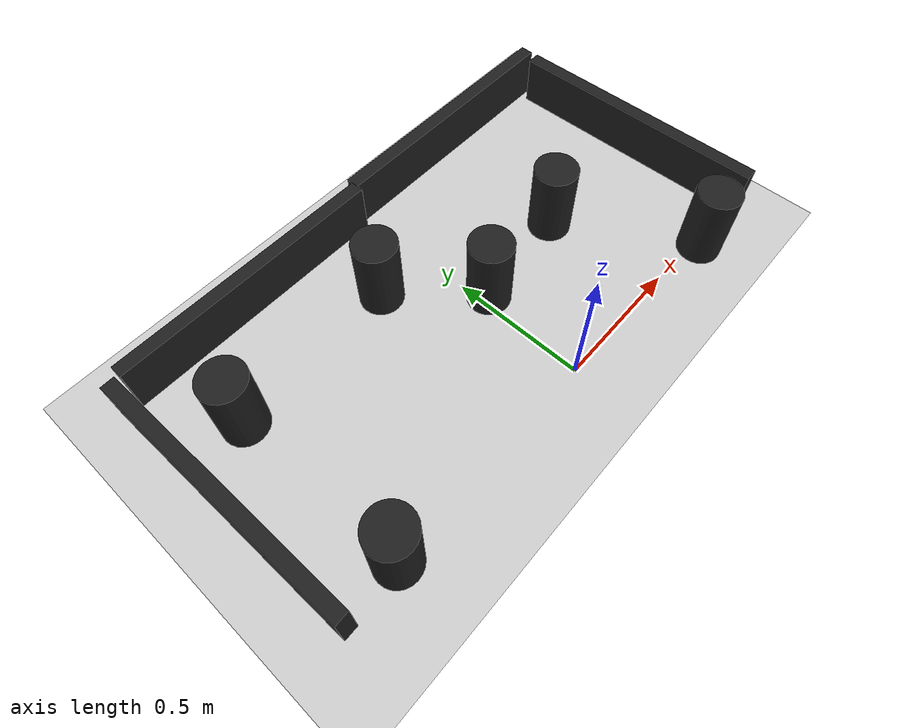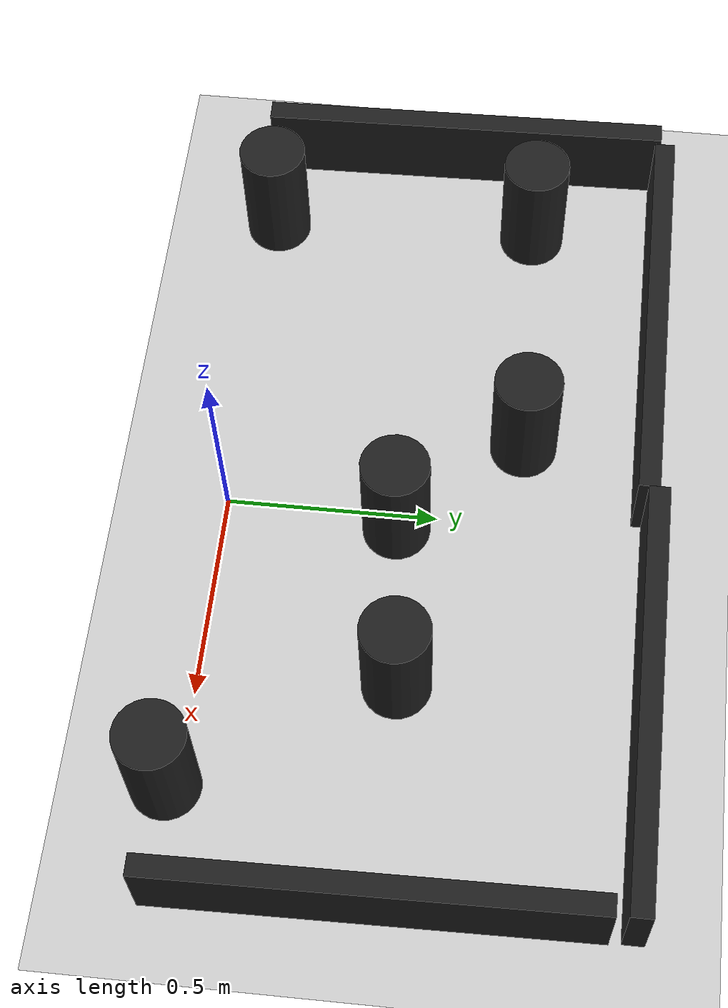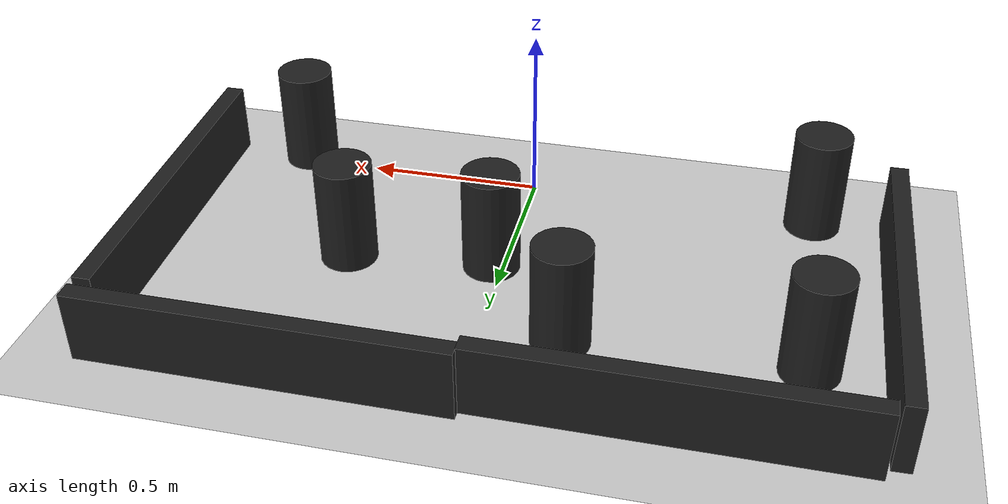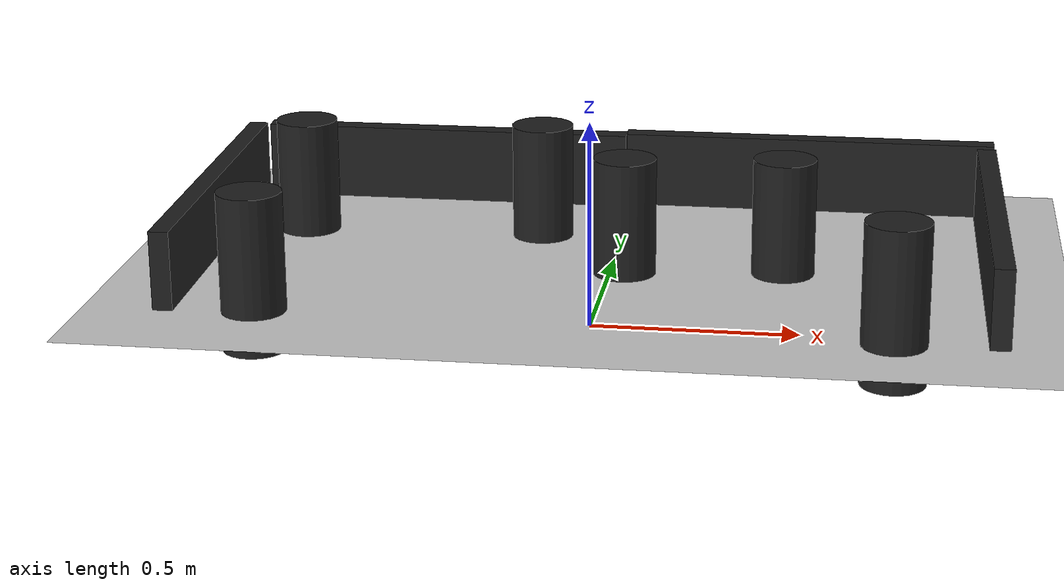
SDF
<sdf version="1.7">
 <world name="default">
  <model name="ground_plane">
   <static>1</static>
   <link name="link">
    <collision name="collision">
     <geometry><plane><normal>0 0 1</normal><size>100 100</size></plane></geometry>
     <surface>
      <contact><collide_bitmask>65535</collide_bitmask></contact>
      <friction><ode><mu>100</mu><mu2>50</mu2></ode></friction>
     </surface>
    </collision>
    <visual name="visual">
     <cast_shadows>0</cast_shadows>
     <geometry><plane><normal>0 0 1</normal><size>100 100</size></plane></geometry>
     <material>
      <script><uri>file://media/materials/scripts/gazebo.material</uri><name>Gazebo/Grey</name></script>
     </material>
    </visual>
   </link>
  </model>
  <model name="wall">
   <link name="link">
    <inertial>
     <mass>1</mass>
     <inertia>
      <ixx>0.166667</ixx>
      <ixy>0</ixy>
      <ixz>0</ixz>
      <iyy>0.166667</iyy>
      <iyz>0</iyz>
      <izz>0.166667</izz>
     </inertia>
    </inertial>
    <visual name="visual">
     <geometry><box><size>1 0.05 0.2</size></box></geometry>
     <material>
      <script><name>Gazebo/Black</name><uri>file://media/materials/scripts/gazebo.material</uri></script>
      <shader type="vertex"><normal_map>__default__</normal_map></shader>
      <ambient>0.996078 0.47451 0.0196078 1</ambient>
      <diffuse>0.7 0.7 0.7 1</diffuse>
      <specular>0.01 0.01 0.01 1</specular>
      <emissive>0 0 0 1</emissive>
     </material>
    </visual>
    <collision name="collision">
     <geometry><box><size>1 0.05 0.2</size></box></geometry>
     <surface>
      <friction>
       <ode><mu>1</mu><mu2>1</mu2><fdir1>0 0 0</fdir1><slip1>0</slip1><slip2>0</slip2></ode>
       <torsional>
        <coefficient>1</coefficient>
        <patch_radius>0</patch_radius>
        <surface_radius>0</surface_radius>
        <use_patch_radius>1</use_patch_radius>
        <ode><slip>0</slip></ode>
       </torsional>
      </friction>
      <bounce><restitution_coefficient>0</restitution_coefficient><threshold>1e+06</threshold></bounce>
      <contact>
       <collide_without_contact>0</collide_without_contact>
       <collide_without_contact_bitmask>1</collide_without_contact_bitmask>
       <collide_bitmask>1</collide_bitmask>
       <ode>
        <soft_cfm>0</soft_cfm>
        <soft_erp>0.2</soft_erp>
        <kp>1e+13</kp>
        <kd>1</kd>
        <max_vel>0.01</max_vel>
        <min_depth>0</min_depth>
       </ode>
       <bullet>
        <split_impulse>1</split_impulse>
        <split_impulse_penetration_threshold>-0.01</split_impulse_penetration_threshold>
        <soft_cfm>0</soft_cfm>
        <soft_erp>0.2</soft_erp>
        <kp>1e+13</kp>
        <kd>1</kd>
       </bullet>
      </contact>
     </surface>
    </collision>
   </link>
   <static>1</static>
   <pose>-0.526171 0.981901 0.1 0 -0 0</pose>
  </model>
  <model name="wall_clone_0_clone">
   <link name="link">
    <inertial>
     <mass>1</mass>
     <inertia>
      <ixx>0.166667</ixx>
      <ixy>0</ixy>
      <ixz>0</ixz>
      <iyy>0.166667</iyy>
      <iyz>0</iyz>
      <izz>0.166667</izz>
     </inertia>
    </inertial>
    <visual name="visual">
     <geometry><box><size>1 0.05 0.2</size></box></geometry>
     <material>
      <script><name>Gazebo/Black</name><uri>file://media/materials/scripts/gazebo.material</uri></script>
      <shader type="vertex"><normal_map>__default__</normal_map></shader>
      <ambient>0.996078 0.47451 0.0196078 1</ambient>
      <diffuse>0.7 0.7 0.7 1</diffuse>
      <specular>0.01 0.01 0.01 1</specular>
      <emissive>0 0 0 1</emissive>
     </material>
    </visual>
    <collision name="collision">
     <geometry><box><size>1 0.05 0.2</size></box></geometry>
     <surface>
      <friction>
       <ode><mu>1</mu><mu2>1</mu2><fdir1>0 0 0</fdir1><slip1>0</slip1><slip2>0</slip2></ode>
       <torsional>
        <coefficient>1</coefficient>
        <patch_radius>0</patch_radius>
        <surface_radius>0</surface_radius>
        <use_patch_radius>1</use_patch_radius>
        <ode><slip>0</slip></ode>
       </torsional>
      </friction>
      <bounce><restitution_coefficient>0</restitution_coefficient><threshold>1e+06</threshold></bounce>
      <contact>
       <collide_without_contact>0</collide_without_contact>
       <collide_without_contact_bitmask>1</collide_without_contact_bitmask>
       <collide_bitmask>1</collide_bitmask>
       <ode>
        <soft_cfm>0</soft_cfm>
        <soft_erp>0.2</soft_erp>
        <kp>1e+13</kp>
        <kd>1</kd>
        <max_vel>0.01</max_vel>
        <min_depth>0</min_depth>
       </ode>
       <bullet>
        <split_impulse>1</split_impulse>
        <split_impulse_penetration_threshold>-0.01</split_impulse_penetration_threshold>
        <soft_cfm>0</soft_cfm>
        <soft_erp>0.2</soft_erp>
        <kp>1e+13</kp>
        <kd>1</kd>
       </bullet>
      </contact>
     </surface>
    </collision>
   </link>
   <static>1</static>
   <pose>0.472598 1.00535 0.1 0 -0 0</pose>
  </model>
  <model name="wall_clone_0_clone_1">
   <link name="link">
    <inertial>
     <mass>1</mass>
     <inertia>
      <ixx>0.166667</ixx>
      <ixy>0</ixy>
      <ixz>0</ixz>
      <iyy>0.166667</iyy>
      <iyz>0</iyz>
      <izz>0.166667</izz>
     </inertia>
    </inertial>
    <visual name="visual">
     <geometry><box><size>1 0.05 0.2</size></box></geometry>
     <material>
      <script><name>Gazebo/Black</name><uri>file://media/materials/scripts/gazebo.material</uri></script>
      <shader type="vertex"><normal_map>__default__</normal_map></shader>
      <ambient>0.996078 0.47451 0.0196078 1</ambient>
      <diffuse>0.7 0.7 0.7 1</diffuse>
      <specular>0.01 0.01 0.01 1</specular>
      <emissive>0 0 0 1</emissive>
     </material>
    </visual>
    <collision name="collision">
     <geometry><box><size>1 0.05 0.2</size></box></geometry>
     <surface>
      <friction>
       <ode><mu>1</mu><mu2>1</mu2><fdir1>0 0 0</fdir1><slip1>0</slip1><slip2>0</slip2></ode>
       <torsional>
        <coefficient>1</coefficient>
        <patch_radius>0</patch_radius>
        <surface_radius>0</surface_radius>
        <use_patch_radius>1</use_patch_radius>
        <ode><slip>0</slip></ode>
       </torsional>
      </friction>
      <bounce><restitution_coefficient>0</restitution_coefficient><threshold>1e+06</threshold></bounce>
      <contact>
       <collide_without_contact>0</collide_without_contact>
       <collide_without_contact_bitmask>1</collide_without_contact_bitmask>
       <collide_bitmask>1</collide_bitmask>
       <ode>
        <soft_cfm>0</soft_cfm>
        <soft_erp>0.2</soft_erp>
        <kp>1e+13</kp>
        <kd>1</kd>
        <max_vel>0.01</max_vel>
        <min_depth>0</min_depth>
       </ode>
       <bullet>
        <split_impulse>1</split_impulse>
        <split_impulse_penetration_threshold>-0.01</split_impulse_penetration_threshold>
        <soft_cfm>0</soft_cfm>
        <soft_erp>0.2</soft_erp>
        <kp>1e+13</kp>
        <kd>1</kd>
       </bullet>
      </contact>
     </surface>
    </collision>
   </link>
   <static>1</static>
   <pose>-1.05265 0.471629 0.1 0 -0 1.59062</pose>
  </model>
  <model name="wall_clone_0_clone_0_clone_clone">
   <link name="link">
    <inertial>
     <mass>1</mass>
     <inertia>
      <ixx>0.166667</ixx>
      <ixy>0</ixy>
      <ixz>0</ixz>
      <iyy>0.166667</iyy>
      <iyz>0</iyz>
      <izz>0.166667</izz>
     </inertia>
    </inertial>
    <visual name="visual">
     <geometry><box><size>1 0.05 0.2</size></box></geometry>
     <material>
      <script><name>Gazebo/Black</name><uri>file://media/materials/scripts/gazebo.material</uri></script>
      <shader type="vertex"><normal_map>__default__</normal_map></shader>
      <ambient>0.996078 0.47451 0.0196078 1</ambient>
      <diffuse>0.7 0.7 0.7 1</diffuse>
      <specular>0.01 0.01 0.01 1</specular>
      <emissive>0 0 0 1</emissive>
     </material>
    </visual>
    <collision name="collision">
     <geometry><box><size>1 0.05 0.2</size></box></geometry>
     <surface>
      <friction>
       <ode><mu>1</mu><mu2>1</mu2><fdir1>0 0 0</fdir1><slip1>0</slip1><slip2>0</slip2></ode>
       <torsional>
        <coefficient>1</coefficient>
        <patch_radius>0</patch_radius>
        <surface_radius>0</surface_radius>
        <use_patch_radius>1</use_patch_radius>
        <ode><slip>0</slip></ode>
       </torsional>
      </friction>
      <bounce><restitution_coefficient>0</restitution_coefficient><threshold>1e+06</threshold></bounce>
      <contact>
       <collide_without_contact>0</collide_without_contact>
       <collide_without_contact_bitmask>1</collide_without_contact_bitmask>
       <collide_bitmask>1</collide_bitmask>
       <ode>
        <soft_cfm>0</soft_cfm>
        <soft_erp>0.2</soft_erp>
        <kp>1e+13</kp>
        <kd>1</kd>
        <max_vel>0.01</max_vel>
        <min_depth>0</min_depth>
       </ode>
       <bullet>
        <split_impulse>1</split_impulse>
        <split_impulse_penetration_threshold>-0.01</split_impulse_penetration_threshold>
        <soft_cfm>0</soft_cfm>
        <soft_erp>0.2</soft_erp>
        <kp>1e+13</kp>
        <kd>1</kd>
       </bullet>
      </contact>
     </surface>
    </collision>
   </link>
   <static>1</static>
   <pose>0.958155 0.453326 0.1 0 -0 1.58499</pose>
  </model>
  <model name="cylinder_clone">
   <link name="link">
    <inertial>
     <mass>1</mass>
     <inertia><ixx>0.145833</ixx><ixy>0</ixy><ixz>0</ixz><iyy>0.145833</iyy><iyz>0</iyz><izz>0.125</izz></inertia>
    </inertial>
    <visual name="visual">
     <geometry><cylinder><radius>0.08</radius><length>0.4</length></cylinder></geometry>
     <material>
      <script><name>Gazebo/Black</name><uri>file://media/materials/scripts/gazebo.material</uri></script>
      <shader type="vertex"><normal_map>__default__</normal_map></shader>
      <ambient>1 0 0 1</ambient>
      <diffuse>0.7 0.7 0.7 1</diffuse>
      <specular>0.01 0.01 0.01 1</specular>
      <emissive>0 0 0 1</emissive>
     </material>
    </visual>
    <collision name="collision">
     <geometry><cylinder><radius>0.08</radius><length>0.4</length></cylinder></geometry>
     <surface>
      <friction>
       <ode><mu>1</mu><mu2>1</mu2><fdir1>0 0 0</fdir1><slip1>0</slip1><slip2>0</slip2></ode>
       <torsional>
        <coefficient>1</coefficient>
        <patch_radius>0</patch_radius>
        <surface_radius>0</surface_radius>
        <use_patch_radius>1</use_patch_radius>
        <ode><slip>0</slip></ode>
       </torsional>
      </friction>
      <bounce><restitution_coefficient>0</restitution_coefficient><threshold>1e+06</threshold></bounce>
      <contact>
       <collide_without_contact>0</collide_without_contact>
       <collide_without_contact_bitmask>1</collide_without_contact_bitmask>
       <collide_bitmask>1</collide_bitmask>
       <ode>
        <soft_cfm>0</soft_cfm>
        <soft_erp>0.2</soft_erp>
        <kp>1e+13</kp>
        <kd>1</kd>
        <max_vel>0.01</max_vel>
        <min_depth>0</min_depth>
       </ode>
       <bullet>
        <split_impulse>1</split_impulse>
        <split_impulse_penetration_threshold>-0.01</split_impulse_penetration_threshold>
        <soft_cfm>0</soft_cfm>
        <soft_erp>0.2</soft_erp>
        <kp>1e+13</kp>
        <kd>1</kd>
       </bullet>
      </contact>
     </surface>
    </collision>
   </link>
   <static>1</static>
   <pose>-0.825084 0.010533 0.1 0 -0 0</pose>
  </model>
  <model name="cylinder_clone_0">
   <link name="link">
    <inertial>
     <mass>1</mass>
     <inertia><ixx>0.145833</ixx><ixy>0</ixy><ixz>0</ixz><iyy>0.145833</iyy><iyz>0</iyz><izz>0.125</izz></inertia>
    </inertial>
    <visual name="visual">
     <geometry><cylinder><radius>0.08</radius><length>0.4</length></cylinder></geometry>
     <material>
      <script><name>Gazebo/Black</name><uri>file://media/materials/scripts/gazebo.material</uri></script>
      <shader type="vertex"><normal_map>__default__</normal_map></shader>
      <ambient>1 0 0 1</ambient>
      <diffuse>0.7 0.7 0.7 1</diffuse>
      <specular>0.01 0.01 0.01 1</specular>
      <emissive>0 0 0 1</emissive>
     </material>
    </visual>
    <collision name="collision">
     <geometry><cylinder><radius>0.08</radius><length>0.4</length></cylinder></geometry>
     <surface>
      <friction>
       <ode><mu>1</mu><mu2>1</mu2><fdir1>0 0 0</fdir1><slip1>0</slip1><slip2>0</slip2></ode>
       <torsional>
        <coefficient>1</coefficient>
        <patch_radius>0</patch_radius>
        <surface_radius>0</surface_radius>
        <use_patch_radius>1</use_patch_radius>
        <ode><slip>0</slip></ode>
       </torsional>
      </friction>
      <bounce><restitution_coefficient>0</restitution_coefficient><threshold>1e+06</threshold></bounce>
      <contact>
       <collide_without_contact>0</collide_without_contact>
       <collide_without_contact_bitmask>1</collide_without_contact_bitmask>
       <collide_bitmask>1</collide_bitmask>
       <ode>
        <soft_cfm>0</soft_cfm>
        <soft_erp>0.2</soft_erp>
        <kp>1e+13</kp>
        <kd>1</kd>
        <max_vel>0.01</max_vel>
        <min_depth>0</min_depth>
       </ode>
       <bullet>
        <split_impulse>1</split_impulse>
        <split_impulse_penetration_threshold>-0.01</split_impulse_penetration_threshold>
        <soft_cfm>0</soft_cfm>
        <soft_erp>0.2</soft_erp>
        <kp>1e+13</kp>
        <kd>1</kd>
       </bullet>
      </contact>
     </surface>
    </collision>
   </link>
   <static>1</static>
   <pose>-0.844742 0.664209 0.1 0 -0 0</pose>
  </model>
  <model name="cylinder_clone_clone_0_clone">
   <link name="link">
    <inertial>
     <mass>1</mass>
     <inertia><ixx>0.145833</ixx><ixy>0</ixy><ixz>0</ixz><iyy>0.145833</iyy><iyz>0</iyz><izz>0.125</izz></inertia>
    </inertial>
    <visual name="visual">
     <geometry><cylinder><radius>0.08</radius><length>0.4</length></cylinder></geometry>
     <material>
      <script><name>Gazebo/Black</name><uri>file://media/materials/scripts/gazebo.material</uri></script>
      <shader type="vertex"><normal_map>__default__</normal_map></shader>
      <ambient>1 0 0 1</ambient>
      <diffuse>0.7 0.7 0.7 1</diffuse>
      <specular>0.01 0.01 0.01 1</specular>
      <emissive>0 0 0 1</emissive>
     </material>
    </visual>
    <collision name="collision">
     <geometry><cylinder><radius>0.08</radius><length>0.4</length></cylinder></geometry>
     <surface>
      <friction>
       <ode><mu>1</mu><mu2>1</mu2><fdir1>0 0 0</fdir1><slip1>0</slip1><slip2>0</slip2></ode>
       <torsional>
        <coefficient>1</coefficient>
        <patch_radius>0</patch_radius>
        <surface_radius>0</surface_radius>
        <use_patch_radius>1</use_patch_radius>
        <ode><slip>0</slip></ode>
       </torsional>
      </friction>
      <bounce><restitution_coefficient>0</restitution_coefficient><threshold>1e+06</threshold></bounce>
      <contact>
       <collide_without_contact>0</collide_without_contact>
       <collide_without_contact_bitmask>1</collide_without_contact_bitmask>
       <collide_bitmask>1</collide_bitmask>
       <ode>
        <soft_cfm>0</soft_cfm>
        <soft_erp>0.2</soft_erp>
        <kp>1e+13</kp>
        <kd>1</kd>
        <max_vel>0.01</max_vel>
        <min_depth>0</min_depth>
       </ode>
       <bullet>
        <split_impulse>1</split_impulse>
        <split_impulse_penetration_threshold>-0.01</split_impulse_penetration_threshold>
        <soft_cfm>0</soft_cfm>
        <soft_erp>0.2</soft_erp>
        <kp>1e+13</kp>
        <kd>1</kd>
       </bullet>
      </contact>
     </surface>
    </collision>
   </link>
   <static>1</static>
   <pose>-0.215669 0.688805 0.1 0 -0 0</pose>
  </model>
  <model name="cylinder_clone_clone_0_clone_0">
   <link name="link">
    <inertial>
     <mass>1</mass>
     <inertia><ixx>0.145833</ixx><ixy>0</ixy><ixz>0</ixz><iyy>0.145833</iyy><iyz>0</iyz><izz>0.125</izz></inertia>
    </inertial>
    <visual name="visual">
     <geometry><cylinder><radius>0.08</radius><length>0.4</length></cylinder></geometry>
     <material>
      <script><name>Gazebo/Black</name><uri>file://media/materials/scripts/gazebo.material</uri></script>
      <shader type="vertex"><normal_map>__default__</normal_map></shader>
      <ambient>1 0 0 1</ambient>
      <diffuse>0.7 0.7 0.7 1</diffuse>
      <specular>0.01 0.01 0.01 1</specular>
      <emissive>0 0 0 1</emissive>
     </material>
    </visual>
    <collision name="collision">
     <geometry><cylinder><radius>0.08</radius><length>0.4</length></cylinder></geometry>
     <surface>
      <friction>
       <ode><mu>1</mu><mu2>1</mu2><fdir1>0 0 0</fdir1><slip1>0</slip1><slip2>0</slip2></ode>
       <torsional>
        <coefficient>1</coefficient>
        <patch_radius>0</patch_radius>
        <surface_radius>0</surface_radius>
        <use_patch_radius>1</use_patch_radius>
        <ode><slip>0</slip></ode>
       </torsional>
      </friction>
      <bounce><restitution_coefficient>0</restitution_coefficient><threshold>1e+06</threshold></bounce>
      <contact>
       <collide_without_contact>0</collide_without_contact>
       <collide_without_contact_bitmask>1</collide_without_contact_bitmask>
       <collide_bitmask>1</collide_bitmask>
       <ode>
        <soft_cfm>0</soft_cfm>
        <soft_erp>0.2</soft_erp>
        <kp>1e+13</kp>
        <kd>1</kd>
        <max_vel>0.01</max_vel>
        <min_depth>0</min_depth>
       </ode>
       <bullet>
        <split_impulse>1</split_impulse>
        <split_impulse_penetration_threshold>-0.01</split_impulse_penetration_threshold>
        <soft_cfm>0</soft_cfm>
        <soft_erp>0.2</soft_erp>
        <kp>1e+13</kp>
        <kd>1</kd>
       </bullet>
      </contact>
     </surface>
    </collision>
   </link>
   <static>1</static>
   <pose>0.43455 0.449779 0.1 0 -0 0</pose>
  </model>
  <model name="cylinder_clone_clone_0_clone_2">
   <link name="link">
    <inertial>
     <mass>1</mass>
     <inertia><ixx>0.145833</ixx><ixy>0</ixy><ixz>0</ixz><iyy>0.145833</iyy><iyz>0</iyz><izz>0.125</izz></inertia>
    </inertial>
    <visual name="visual">
     <geometry><cylinder><radius>0.08</radius><length>0.4</length></cylinder></geometry>
     <material>
      <script><name>Gazebo/Black</name><uri>file://media/materials/scripts/gazebo.material</uri></script>
      <shader type="vertex"><normal_map>__default__</normal_map></shader>
      <ambient>1 0 0 1</ambient>
      <diffuse>0.7 0.7 0.7 1</diffuse>
      <specular>0.01 0.01 0.01 1</specular>
      <emissive>0 0 0 1</emissive>
     </material>
    </visual>
    <collision name="collision">
     <geometry><cylinder><radius>0.08</radius><length>0.4</length></cylinder></geometry>
     <surface>
      <friction>
       <ode><mu>1</mu><mu2>1</mu2><fdir1>0 0 0</fdir1><slip1>0</slip1><slip2>0</slip2></ode>
       <torsional>
        <coefficient>1</coefficient>
        <patch_radius>0</patch_radius>
        <surface_radius>0</surface_radius>
        <use_patch_radius>1</use_patch_radius>
        <ode><slip>0</slip></ode>
       </torsional>
      </friction>
      <bounce><restitution_coefficient>0</restitution_coefficient><threshold>1e+06</threshold></bounce>
      <contact>
       <collide_without_contact>0</collide_without_contact>
       <collide_without_contact_bitmask>1</collide_without_contact_bitmask>
       <collide_bitmask>1</collide_bitmask>
       <ode>
        <soft_cfm>0</soft_cfm>
        <soft_erp>0.2</soft_erp>
        <kp>1e+13</kp>
        <kd>1</kd>
        <max_vel>0.01</max_vel>
        <min_depth>0</min_depth>
       </ode>
       <bullet>
        <split_impulse>1</split_impulse>
        <split_impulse_penetration_threshold>-0.01</split_impulse_penetration_threshold>
        <soft_cfm>0</soft_cfm>
        <soft_erp>0.2</soft_erp>
        <kp>1e+13</kp>
        <kd>1</kd>
       </bullet>
      </contact>
     </surface>
    </collision>
   </link>
   <static>1</static>
   <pose>0.719942 -0.02845 0.1 0 -0 0</pose>
  </model>
  <model name="cylinder_clone_clone_0_clone_4">
   <link name="link">
    <inertial>
     <mass>1</mass>
     <inertia><ixx>0.145833</ixx><ixy>0</ixy><ixz>0</ixz><iyy>0.145833</iyy><iyz>0</iyz><izz>0.125</izz></inertia>
    </inertial>
    <visual name="visual">
     <geometry><cylinder><radius>0.08</radius><length>0.4</length></cylinder></geometry>
     <material>
      <script><name>Gazebo/Black</name><uri>file://media/materials/scripts/gazebo.material</uri></script>
      <shader type="vertex"><normal_map>__default__</normal_map></shader>
      <ambient>1 0 0 1</ambient>
      <diffuse>0.7 0.7 0.7 1</diffuse>
      <specular>0.01 0.01 0.01 1</specular>
      <emissive>0 0 0 1</emissive>
     </material>
    </visual>
    <collision name="collision">
     <geometry><cylinder><radius>0.08</radius><length>0.4</length></cylinder></geometry>
     <surface>
      <friction>
       <ode><mu>1</mu><mu2>1</mu2><fdir1>0 0 0</fdir1><slip1>0</slip1><slip2>0</slip2></ode>
       <torsional>
        <coefficient>1</coefficient>
        <patch_radius>0</patch_radius>
        <surface_radius>0</surface_radius>
        <use_patch_radius>1</use_patch_radius>
        <ode><slip>0</slip></ode>
       </torsional>
      </friction>
      <bounce><restitution_coefficient>0</restitution_coefficient><threshold>1e+06</threshold></bounce>
      <contact>
       <collide_without_contact>0</collide_without_contact>
       <collide_without_contact_bitmask>1</collide_without_contact_bitmask>
       <collide_bitmask>1</collide_bitmask>
       <ode>
        <soft_cfm>0</soft_cfm>
        <soft_erp>0.2</soft_erp>
        <kp>1e+13</kp>
        <kd>1</kd>
        <max_vel>0.01</max_vel>
        <min_depth>0</min_depth>
       </ode>
       <bullet>
        <split_impulse>1</split_impulse>
        <split_impulse_penetration_threshold>-0.01</split_impulse_penetration_threshold>
        <soft_cfm>0</soft_cfm>
        <soft_erp>0.2</soft_erp>
        <kp>1e+13</kp>
        <kd>1</kd>
       </bullet>
      </contact>
     </surface>
    </collision>
   </link>
   <static>1</static>
   <pose>0.03497 0.407057 0.1 0 -0 0</pose>
  </model>
 </world>
</sdf>
